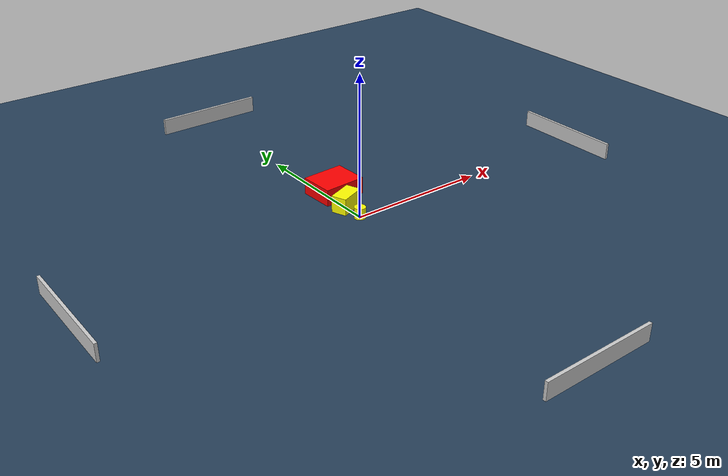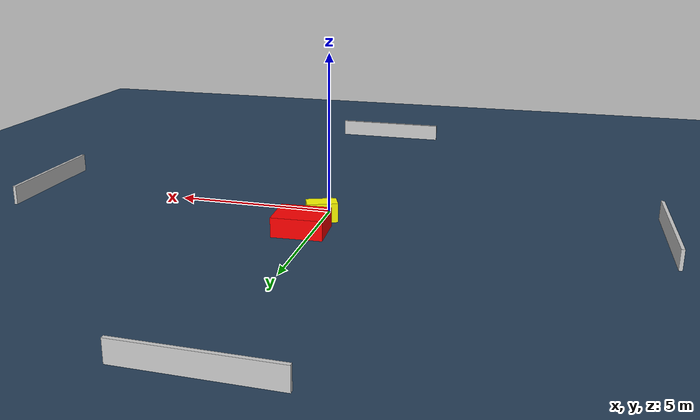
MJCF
<?xml version="1.0" ?>
<mujoco model="generated_environment">
  <option timestep="0.01" integrator="RK4" cone="elliptic"/>
  <default>
    <geom density="1"/>
  </default>
  <asset>
    <texture builtin="gradient" height="3072" name="skybox" rgb1="0.3 0.5 0.7" rgb2="0 0 0" type="skybox" width="512"/>
    <texture builtin="checker" height="300" name="groundplane" rgb1="0.2 0.3 0.4" rgb2="0.1 0.2 0.3" type="2d" width="300"/>
    <material name="groundplane" reflectance="0.2" texrepeat="5 5" texture="groundplane"/>
  </asset>
  <worldbody>
    <light dir="0 0 -1" directional="true" pos="0 0 1.5"/>
    <geom condim="3" friction="0.5 0.005 0.001" material="groundplane" name="floor" pos="0 0 0" size="0 0 0.05" type="plane"/>
    <body name="walls">
      <geom name="wall_1" condim="4" pos="-10.0 0.0 0.3" rgba="0.800000011920929 0.800000011920929 0.800000011920929 1.0" size="0.05 2.0 0.3" type="box"/>
      <geom name="wall_2" condim="4" pos="10.0 0.0 0.3" rgba="0.800000011920929 0.800000011920929 0.800000011920929 1.0" size="0.05 2.0 0.3" type="box"/>
      <geom name="wall_3" condim="4" pos="0.0 -10.0 0.3" rgba="0.800000011920929 0.800000011920929 0.800000011920929 1.0" size="2.0 0.05 0.3" type="box"/>
      <geom name="wall_4" condim="4" pos="0.0 10.0 0.3" rgba="0.800000011920929 0.800000011920929 0.800000011920929 1.0" size="2.0 0.05 0.3" type="box"/>
    </body>
    <body name="robot">
      <joint name="joint_x" type="slide" pos="0 0 0" axis="1 0 0"/>
      <joint name="joint_y" type="slide" pos="0 0 0" axis="0 1 0"/>
      <geom name="robot" type="cylinder" pos="0.0 0.0 0.2" size="0.2 0.2 0.0" mass="5.0" friction="1.0 0.005 0.0001" condim="4" rgba="1.0 1.0 0.0 1.0"/>
    </body>
    <body name="obstacle_1_movable">
      <geom name="obstacle_1_movable" condim="4" pos="0.024401686421054555 0.7902477777174028 0.3" euler="0 0 21.685258287511274" friction="0.0 0.005 0.001" rgba="1.0 1.0 0.0 1.0" size="0.47345404305428124 0.27191790894282597 0.3" type="box" mass="0.1"/>
      <joint type="free"/>
    </body>
    <body name="obstacle_2_static">
      <geom name="obstacle_2_static" condim="4" pos="0.32672802190454325 1.9182379330033372 0.3" euler="0 0 92.97914359495418" friction="0.0 0.005 0.001" rgba="1.0 0.0 0.0 1.0" size="0.6243879283448831 0.7692548053733486 0.3" type="box"/>
    </body>
  </worldbody>
  <actuator>
    <motor name="actuator_x" joint="joint_x" gear="1" ctrlrange="-1 1"/>
    <motor name="actuator_y" joint="joint_y" gear="1" ctrlrange="-1 1"/>
  </actuator>
</mujoco>
